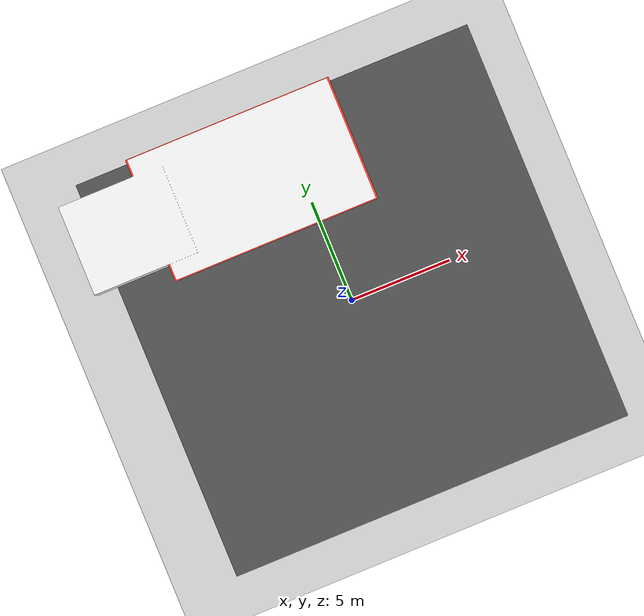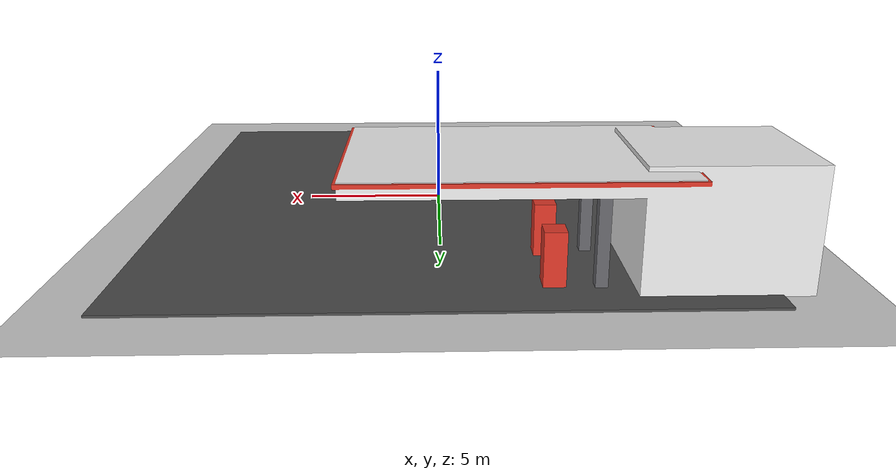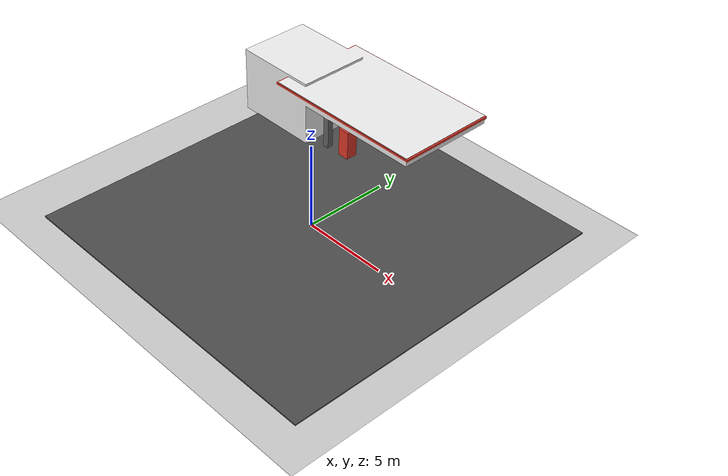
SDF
<sdf version="1.6">
 <world name="default">
  <model name="ground_plane">
   <static>1</static>
   <link name="link">
    <collision name="collision">
     <geometry><plane><normal>0 0 1</normal><size>100 100</size></plane></geometry>
     <surface><friction><ode><mu>100</mu><mu2>50</mu2></ode></friction></surface>
    </collision>
    <visual name="visual">
     <cast_shadows>0</cast_shadows>
     <geometry><plane><normal>0 0 1</normal><size>100 100</size></plane></geometry>
     <material>
      <script><uri>file://media/materials/scripts/gazebo.material</uri><name>Gazebo/Grey</name></script>
     </material>
    </visual>
   </link>
  </model>
  <light name="sun" type="directional">
   <pose>0 0 10 0 -0 0</pose>
   <diffuse>0.8 0.8 0.8 1</diffuse>
   <specular>0.2 0.2 0.2 1</specular>
   <attenuation>
    <range>1000</range>
    <constant>0.9</constant>
    <linear>0.01</linear>
    <quadratic>0.001</quadratic>
   </attenuation>
   <direction>-0.5 0.1 -0.9</direction>
  </light>
  <model name="asphalt">
   <static>1</static>
   <link name="link">
    <collision name="collision"><geometry><box><size>20 20 0.1</size></box></geometry></collision>
    <visual name="visual">
     <cast_shadows>0</cast_shadows>
     <geometry><box><size>20 20 0.1</size></box></geometry>
     <material>
      <script>
       <uri>model://asphalt_plane/materials/scripts</uri>
       <uri>model://asphalt_plane/materials/textures</uri>
       <name>vrc/asphalt</name>
      </script>
     </material>
    </visual>
   </link>
  </model>
  <model name="gas_station">
   <static>1</static>
   <link name="link">
    <collision name="collision">
     <geometry><mesh><uri>model://gas_station/meshes/gas_station.dae</uri></mesh></geometry>
    </collision>
    <visual name="visual">
     <geometry><mesh><uri>model://gas_station/meshes/gas_station.dae</uri></mesh></geometry>
     <material>
      <script>
       <uri>model://gas_station/materials/scripts</uri>
       <uri>model://gas_station/materials/textures</uri>
       <name>GasStation/Diffuse</name>
      </script>
      <shader type="normal_map_tangent_space"><normal_map>GasStation_Normal.png</normal_map></shader>
     </material>
    </visual>
   </link>
   <pose>-4.56562 6.98202 0 0 -0 0</pose>
  </model>
  <gravity>0 0 -9.8</gravity>
  <magnetic_field>6e-06 2.3e-05 -4.2e-05</magnetic_field>
  <atmosphere type="adiabatic"/>
  <physics name="default_physics" default="0" type="ode">
   <max_step_size>0.001</max_step_size>
   <real_time_factor>1</real_time_factor>
   <real_time_update_rate>1000</real_time_update_rate>
  </physics>
  <scene><ambient>0.4 0.4 0.4 1</ambient><background>0.7 0.7 0.7 1</background><shadows>1</shadows></scene>
  <audio><device>default</device></audio>
  <spherical_coordinates>
   <surface_model>EARTH_WGS84</surface_model>
   <latitude_deg>0</latitude_deg>
   <longitude_deg>0</longitude_deg>
   <elevation>0</elevation>
   <heading_deg>0</heading_deg>
  </spherical_coordinates>
 </world>
</sdf>
